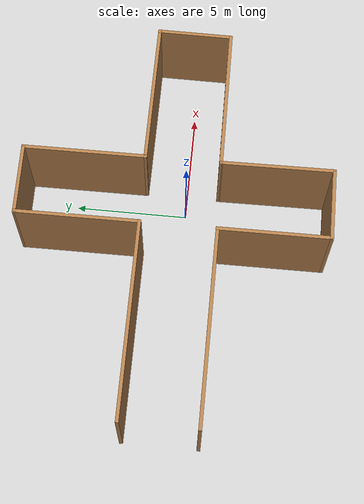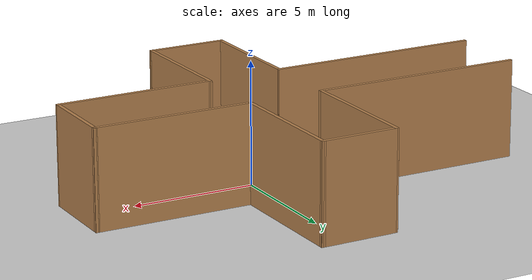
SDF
<sdf version="1.7">
 <world name="default">
  <plugin name="gazebo_ros_state" filename="libgazebo_ros_state.so">
   <ros>
    <namespace>/plug</namespace>
    <argument>model_states:=model_states_plug</argument>
    <argument>link_states:=link_states_plug</argument>
   </ros>
   <update_rate>100.0</update_rate>
  </plugin>
  <plugin name="disable_physics" filename="libdisable_physics.so"/>
  <light name="sun" type="directional">
   <pose>0 0 10 0 -0 0</pose>
   <diffuse>0.8 0.8 0.8 1</diffuse>
   <specular>0.2 0.2 0.2 1</specular>
   <attenuation>
    <range>1000</range>
    <constant>0.9</constant>
    <linear>0.01</linear>
    <quadratic>0.001</quadratic>
   </attenuation>
   <direction>-0.5 0.1 -0.9</direction>
   <spot><inner_angle>0</inner_angle><outer_angle>0</outer_angle><falloff>0</falloff></spot>
  </light>
  <model name="ground_plane">
   <static>1</static>
   <link name="link">
    <collision name="collision">
     <geometry><plane><normal>0 0 1</normal><size>100 100</size></plane></geometry>
     <surface>
      <contact><collide_bitmask>65535</collide_bitmask></contact>
      <friction><ode><mu>100</mu><mu2>50</mu2></ode></friction>
     </surface>
    </collision>
    <visual name="visual">
     <cast_shadows>0</cast_shadows>
     <geometry><plane><normal>0 0 1</normal><size>100 100</size></plane></geometry>
     <material>
      <script><uri>file://media/materials/scripts/gazebo.material</uri><name>Gazebo/Grey</name></script>
     </material>
    </visual>
   </link>
  </model>
  <gravity>0 0 -9.8</gravity>
  <magnetic_field>6e-06 2.3e-05 -4.2e-05</magnetic_field>
  <atmosphere type="adiabatic"/>
  <physics type="ode">
   <max_step_size>0.01</max_step_size>
   <real_time_factor>1</real_time_factor>
   <real_time_update_rate>100</real_time_update_rate>
  </physics>
  <scene><ambient>0.4 0.4 0.4 1</ambient><background>0.7 0.7 0.7 1</background><shadows>1</shadows></scene>
  <audio><device>default</device></audio>
  <spherical_coordinates>
   <surface_model>EARTH_WGS84</surface_model>
   <latitude_deg>0</latitude_deg>
   <longitude_deg>0</longitude_deg>
   <elevation>0</elevation>
   <heading_deg>0</heading_deg>
  </spherical_coordinates>
  <model name="tall_intersection">
   <pose>-1.62996 0.433225 0 0 -0 1.57525</pose>
   <link name="Wall_0">
    <collision name="Wall_0_Collision">
     <geometry><box><size>8.75 0.15 4</size></box></geometry>
     <pose>0 0 2 0 -0 0</pose>
    </collision>
    <visual name="Wall_0_Visual">
     <pose>0 0 2 0 -0 0</pose>
     <geometry><box><size>8.75 0.15 4</size></box></geometry>
     <material>
      <script><uri>file://media/materials/scripts/gazebo.material</uri><name>Gazebo/Wood</name></script>
      <ambient>1 1 1 1</ambient>
     </material>
     <meta><layer>0</layer></meta>
    </visual>
    <pose>-1.93868 4.73732 0 0 -0 -1.57312</pose>
   </link>
   <link name="Wall_1">
    <collision name="Wall_1_Collision">
     <geometry><box><size>4.98986 0.15 4</size></box></geometry>
     <pose>0 0 2 0 -0 0</pose>
    </collision>
    <visual name="Wall_1_Visual">
     <pose>0 0 2 0 -0 0</pose>
     <geometry><box><size>4.98986 0.15 4</size></box></geometry>
     <material>
      <script><uri>file://media/materials/scripts/gazebo.material</uri><name>Gazebo/Wood</name></script>
      <ambient>1 1 1 1</ambient>
     </material>
     <meta><layer>0</layer></meta>
    </visual>
    <pose>-4.36868 0.43732 0 0 -0 3.14159</pose>
   </link>
   <link name="Wall_10">
    <collision name="Wall_10_Collision">
     <geometry><box><size>8.75 0.15 4</size></box></geometry>
     <pose>0 0 2 0 -0 0</pose>
    </collision>
    <visual name="Wall_10_Visual">
     <pose>0 0 2 0 -0 0</pose>
     <geometry><box><size>8.75 0.15 4</size></box></geometry>
     <material>
      <script><uri>file://media/materials/scripts/gazebo.material</uri><name>Gazebo/Wood</name></script>
      <ambient>1 1 1 1</ambient>
     </material>
     <meta><layer>0</layer></meta>
    </visual>
    <pose>1.38132 4.71332 0 0 -0 1.5708</pose>
   </link>
   <link name="Wall_2">
    <collision name="Wall_2_Collision">
     <geometry><box><size>3.27435 0.15 4</size></box></geometry>
     <pose>0 0 2 0 -0 0</pose>
    </collision>
    <visual name="Wall_2_Visual">
     <pose>0 0 2 0 -0 0</pose>
     <geometry><box><size>3.27435 0.15 4</size></box></geometry>
     <material>
      <script><uri>file://media/materials/scripts/gazebo.material</uri><name>Gazebo/Wood</name></script>
      <ambient>1 1 1 1</ambient>
     </material>
     <meta><layer>0</layer></meta>
    </visual>
    <pose>-6.78868 -1.12468 0 0 -0 -1.5708</pose>
   </link>
   <link name="Wall_3">
    <collision name="Wall_3_Collision">
     <geometry><box><size>5.07112 0.15 4</size></box></geometry>
     <pose>0 0 2 0 -0 0</pose>
    </collision>
    <visual name="Wall_3_Visual">
     <pose>0 0 2 0 -0 0</pose>
     <geometry><box><size>5.07112 0.15 4</size></box></geometry>
     <material>
      <script><uri>file://media/materials/scripts/gazebo.material</uri><name>Gazebo/Wood</name></script>
      <ambient>1 1 1 1</ambient>
     </material>
     <meta><layer>0</layer></meta>
    </visual>
    <pose>-4.32818 -2.66918 0 0 -0 0.007112</pose>
   </link>
   <link name="Wall_4">
    <collision name="Wall_4_Collision">
     <geometry><box><size>6.5 0.15 4</size></box></geometry>
     <pose>0 0 2 0 -0 0</pose>
    </collision>
    <visual name="Wall_4_Visual">
     <pose>0 0 2 0 -0 0</pose>
     <geometry><box><size>6.5 0.15 4</size></box></geometry>
     <material>
      <script><uri>file://media/materials/scripts/gazebo.material</uri><name>Gazebo/Wood</name></script>
      <ambient>1 1 1 1</ambient>
     </material>
     <meta><layer>0</layer></meta>
    </visual>
    <pose>-1.85018 -5.82668 0 0 -0 -1.56529</pose>
   </link>
   <link name="Wall_5">
    <collision name="Wall_5_Collision">
     <geometry><box><size>3.39379 0.15 4</size></box></geometry>
     <pose>0 0 2 0 -0 0</pose>
    </collision>
    <visual name="Wall_5_Visual">
     <pose>0 0 2 0 -0 0</pose>
     <geometry><box><size>3.39379 0.15 4</size></box></geometry>
     <material>
      <script><uri>file://media/materials/scripts/gazebo.material</uri><name>Gazebo/Wood</name></script>
      <ambient>1 1 1 1</ambient>
     </material>
     <meta><layer>0</layer></meta>
    </visual>
    <pose>-0.210684 -9.01918 0 0 -0 -0.010789</pose>
   </link>
   <link name="Wall_6">
    <collision name="Wall_6_Collision">
     <geometry><box><size>6.52756 0.15 4</size></box></geometry>
     <pose>0 0 2 0 -0 0</pose>
    </collision>
    <visual name="Wall_6_Visual">
     <pose>0 0 2 0 -0 0</pose>
     <geometry><box><size>6.52756 0.15 4</size></box></geometry>
     <material>
      <script><uri>file://media/materials/scripts/gazebo.material</uri><name>Gazebo/Wood</name></script>
      <ambient>1 1 1 1</ambient>
     </material>
     <meta><layer>0</layer></meta>
    </visual>
    <pose>1.42482 -5.84818 0 0 -0 1.56656</pose>
   </link>
   <link name="Wall_7">
    <collision name="Wall_7_Collision">
     <geometry><box><size>5.5 0.15 4</size></box></geometry>
     <pose>0 0 2 0 -0 0</pose>
    </collision>
    <visual name="Wall_7_Visual">
     <pose>0 0 2 0 -0 0</pose>
     <geometry><box><size>5.5 0.15 4</size></box></geometry>
     <material>
      <script><uri>file://media/materials/scripts/gazebo.material</uri><name>Gazebo/Wood</name></script>
      <ambient>1 1 1 1</ambient>
     </material>
     <meta><layer>0</layer></meta>
    </visual>
    <pose>4.11332 -2.65968 0 0 -0 0</pose>
   </link>
   <link name="Wall_8">
    <collision name="Wall_8_Collision">
     <geometry><box><size>3.22355 0.15 4</size></box></geometry>
     <pose>0 0 2 0 -0 0</pose>
    </collision>
    <visual name="Wall_8_Visual">
     <pose>0 0 2 0 -0 0</pose>
     <geometry><box><size>3.22355 0.15 4</size></box></geometry>
     <material>
      <script><uri>file://media/materials/scripts/gazebo.material</uri><name>Gazebo/Wood</name></script>
      <ambient>1 1 1 1</ambient>
     </material>
     <meta><layer>0</layer></meta>
    </visual>
    <pose>6.76982 -1.12318 0 0 -0 1.58284</pose>
   </link>
   <link name="Wall_9">
    <collision name="Wall_9_Collision">
     <geometry><box><size>5.51986 0.15 4</size></box></geometry>
     <pose>0 0 2 0 -0 0</pose>
    </collision>
    <visual name="Wall_9_Visual">
     <pose>0 0 2 0 -0 0</pose>
     <geometry><box><size>5.51986 0.15 4</size></box></geometry>
     <material>
      <script><uri>file://media/materials/scripts/gazebo.material</uri><name>Gazebo/Wood</name></script>
      <ambient>1 1 1 1</ambient>
     </material>
     <meta><layer>0</layer></meta>
    </visual>
    <pose>4.06632 0.413319 0 0 -0 3.14159</pose>
   </link>
   <static>1</static>
  </model>
 </world>
</sdf>
